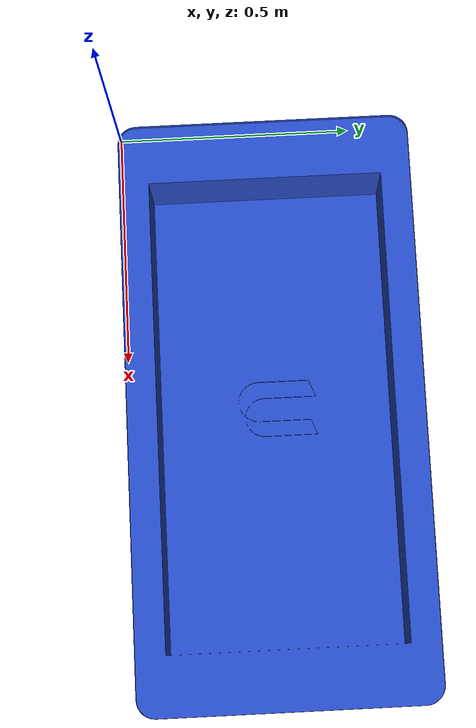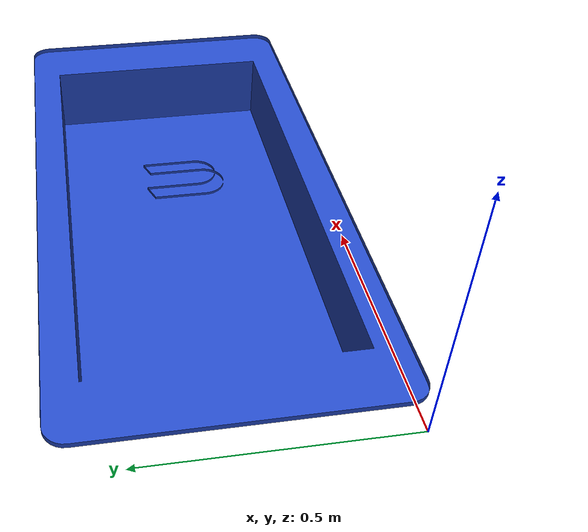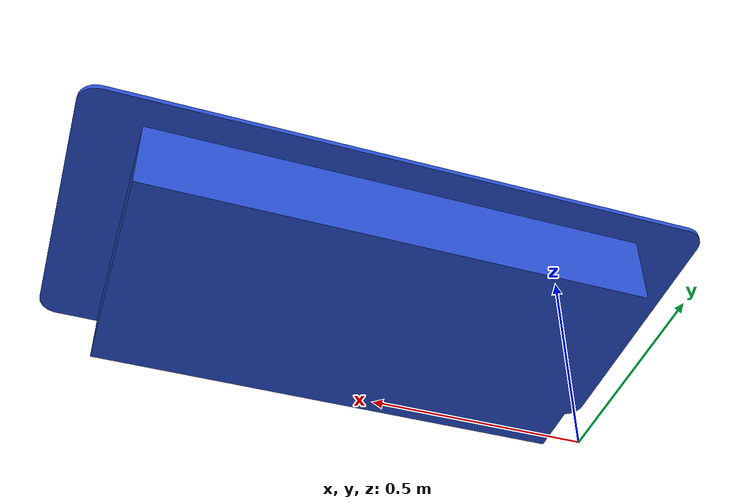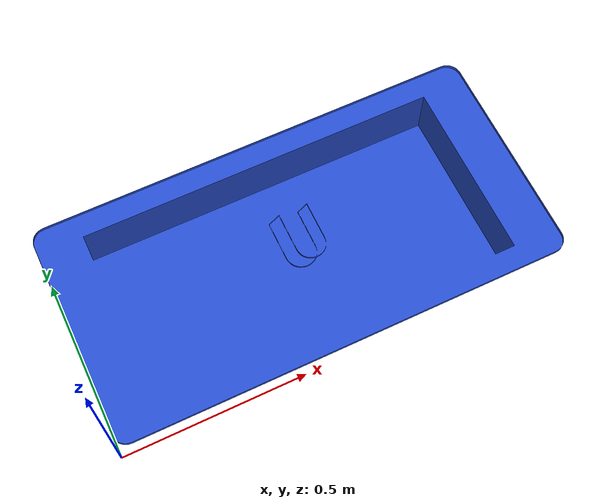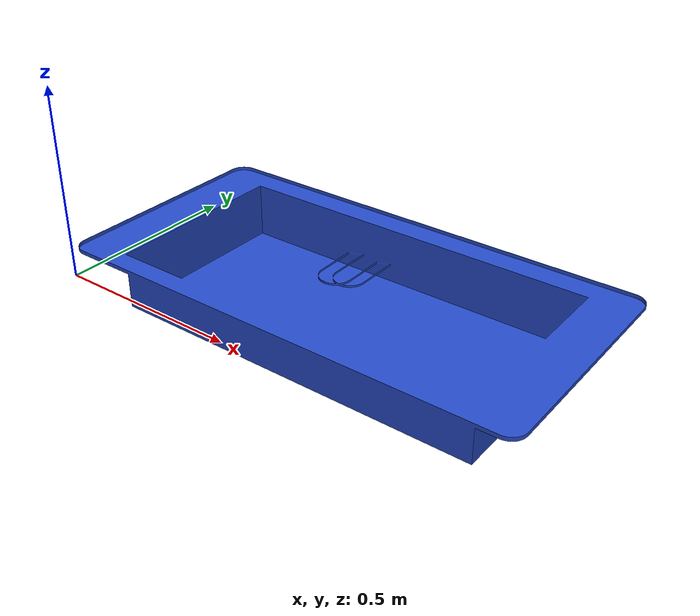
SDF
<?xml version="1.0" ?>

<sdf version="1.5">
  <model name="mybot">
    <link name="link">
      <pose>0.625 0.3125  0.08 0 0 0</pose>
      <inertial>
        <mass>2.0</mass>
        <inertia>
          <ixx>3.2421875</ixx>
          <ixy>0</ixy>
          <ixz>0</ixz>
          <iyy>2.636246</iyy>
          <iyz>0</iyz>
          <izz>0.6909335</izz>
        </inertia>
      </inertial>

      <collision name="collision">
        <geometry>
          <mesh>
            <uri>model://mybot/meshes/mybot.dae</uri>
          </mesh>
        </geometry>
        <surface>
          <contact>
            <ode>
              <max_vel>0.1</max_vel>
              <min_depth>0.001</min_depth>
            </ode>
          </contact>
        </surface>
      </collision>

      <visual name="visual">
        <geometry>
          <mesh>
            <uri>model://mybot/meshes/mybot.dae</uri>
          </mesh>
        </geometry>
        <material>
          <script>
            <uri>file://media/materials/scripts/gazebo.material</uri>
            <name>Gazebo/BlueLaser</name>
          </script>
        </material>
      </visual>

    </link>
  </model>
</sdf>
